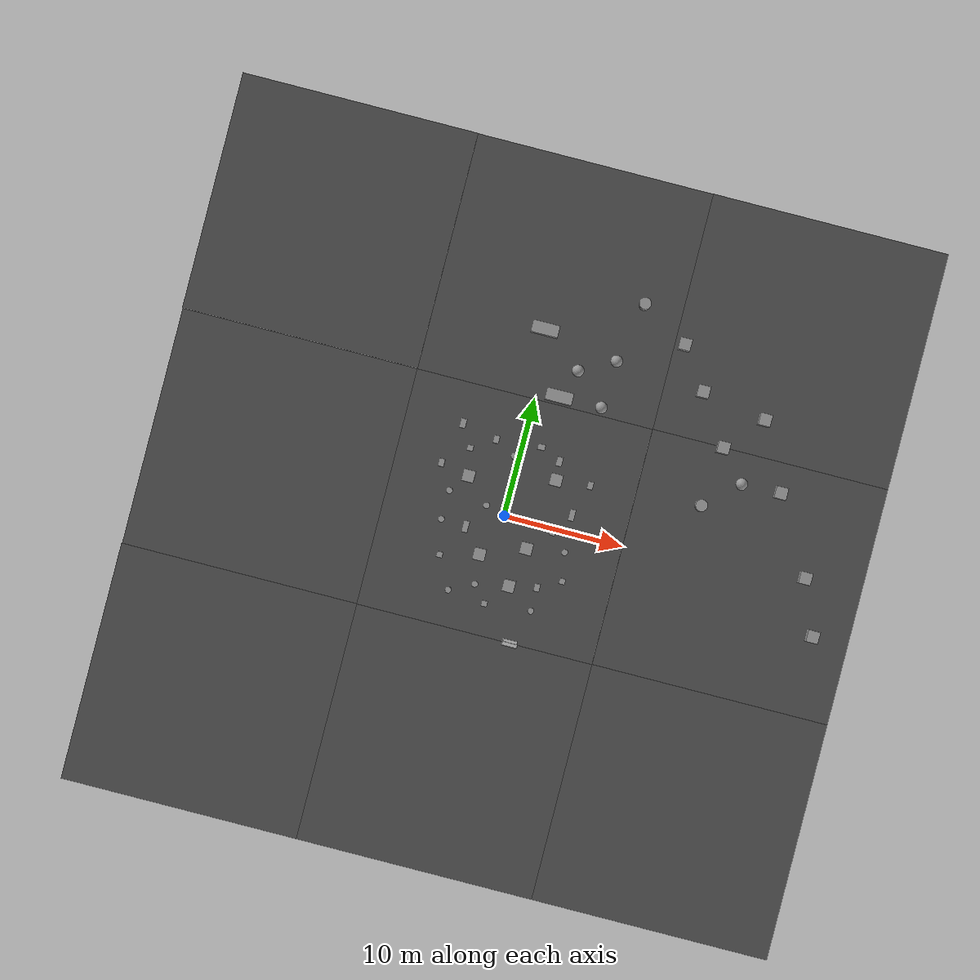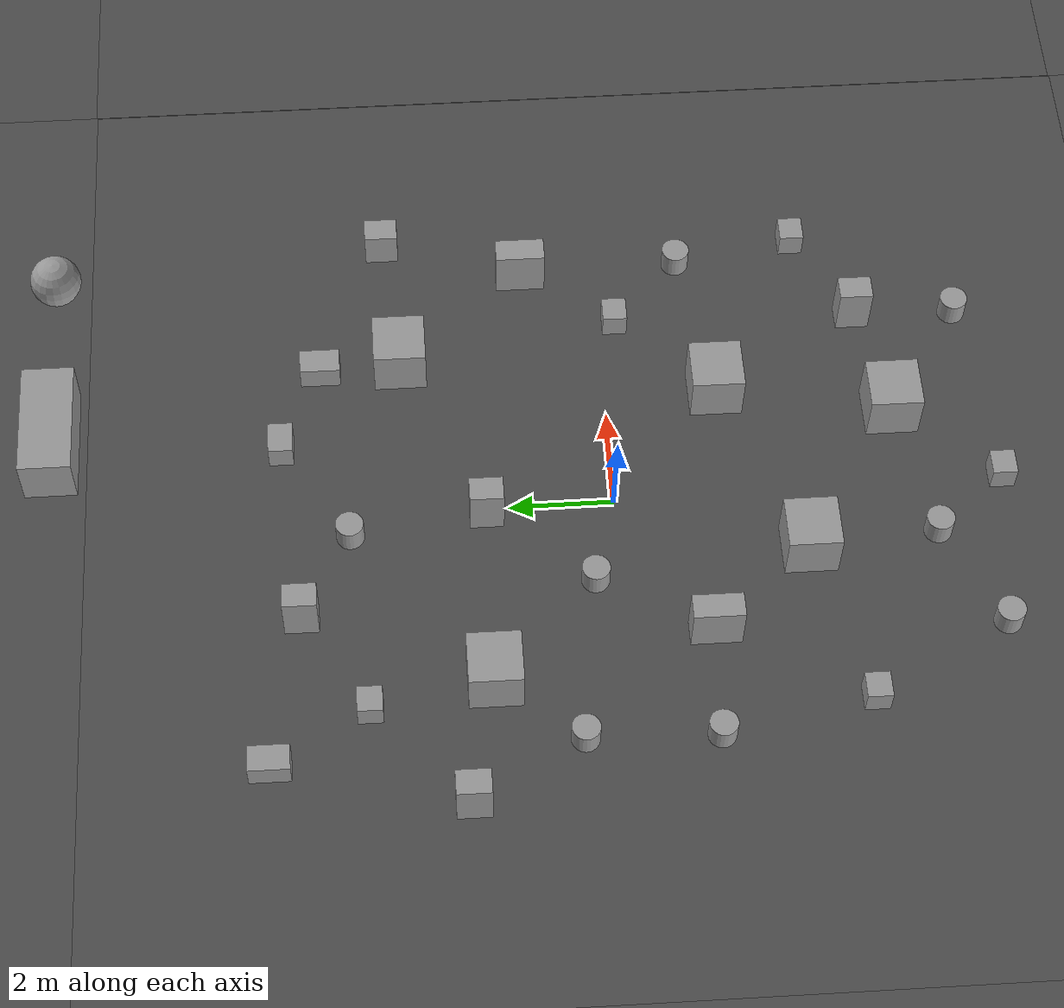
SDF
<sdf version="1.7">
 <world name="default">
  <model name="ground_plane">
   <static>1</static>
   <link name="link">
    <collision name="collision">
     <geometry><plane><normal>0 0 1</normal><size>100 100</size></plane></geometry>
     <surface>
      <contact><collide_bitmask>65535</collide_bitmask></contact>
      <friction><ode><mu>100</mu><mu2>50</mu2></ode></friction>
     </surface>
    </collision>
    <visual name="visual">
     <cast_shadows>0</cast_shadows>
     <geometry><plane><normal>0 0 1</normal><size>100 100</size></plane></geometry>
     <material>
      <script><uri>file://media/materials/scripts/gazebo.material</uri><name>Gazebo/Grey</name></script>
     </material>
    </visual>
   </link>
  </model>
  <model name="asphalt_plane">
   <static>1</static>
   <link name="link">
    <collision name="collision"><geometry><box><size>20 20 0.1</size></box></geometry></collision>
    <visual name="visual">
     <cast_shadows>0</cast_shadows>
     <geometry><box><size>20 20 0.1</size></box></geometry>
     <material>
      <script>
       <uri>model://asphalt_plane/materials/scripts</uri>
       <uri>model://asphalt_plane/materials/textures</uri>
       <name>vrc/asphalt</name>
      </script>
     </material>
    </visual>
   </link>
   <pose>-0.014859 -0.026662 0 0 -0 0</pose>
  </model>
  <model name="asphalt_plane_clone">
   <static>1</static>
   <link name="link">
    <collision name="collision"><geometry><box><size>20 20 0.1</size></box></geometry></collision>
    <visual name="visual">
     <cast_shadows>0</cast_shadows>
     <geometry><box><size>20 20 0.1</size></box></geometry>
     <material>
      <script>
       <uri>model://asphalt_plane/materials/scripts</uri>
       <uri>model://asphalt_plane/materials/textures</uri>
       <name>vrc/asphalt</name>
      </script>
     </material>
    </visual>
   </link>
   <pose>20 0 0 0 -0 0</pose>
  </model>
  <model name="asphalt_plane_clone_0">
   <static>1</static>
   <link name="link">
    <collision name="collision"><geometry><box><size>20 20 0.1</size></box></geometry></collision>
    <visual name="visual">
     <cast_shadows>0</cast_shadows>
     <geometry><box><size>20 20 0.1</size></box></geometry>
     <material>
      <script>
       <uri>model://asphalt_plane/materials/scripts</uri>
       <uri>model://asphalt_plane/materials/textures</uri>
       <name>vrc/asphalt</name>
      </script>
     </material>
    </visual>
   </link>
   <pose>20 -20 0 0 -0 0</pose>
  </model>
  <model name="asphalt_plane_clone_1">
   <static>1</static>
   <link name="link">
    <collision name="collision"><geometry><box><size>20 20 0.1</size></box></geometry></collision>
    <visual name="visual">
     <cast_shadows>0</cast_shadows>
     <geometry><box><size>20 20 0.1</size></box></geometry>
     <material>
      <script>
       <uri>model://asphalt_plane/materials/scripts</uri>
       <uri>model://asphalt_plane/materials/textures</uri>
       <name>vrc/asphalt</name>
      </script>
     </material>
    </visual>
   </link>
   <pose>0 -20 0 0 -0 0</pose>
  </model>
  <model name="asphalt_plane_clone_2">
   <static>1</static>
   <link name="link">
    <collision name="collision"><geometry><box><size>20 20 0.1</size></box></geometry></collision>
    <visual name="visual">
     <cast_shadows>0</cast_shadows>
     <geometry><box><size>20 20 0.1</size></box></geometry>
     <material>
      <script>
       <uri>model://asphalt_plane/materials/scripts</uri>
       <uri>model://asphalt_plane/materials/textures</uri>
       <name>vrc/asphalt</name>
      </script>
     </material>
    </visual>
   </link>
   <pose>-20 -20 0 0 -0 0</pose>
  </model>
  <model name="asphalt_plane_clone_3">
   <static>1</static>
   <link name="link">
    <collision name="collision"><geometry><box><size>20 20 0.1</size></box></geometry></collision>
    <visual name="visual">
     <cast_shadows>0</cast_shadows>
     <geometry><box><size>20 20 0.1</size></box></geometry>
     <material>
      <script>
       <uri>model://asphalt_plane/materials/scripts</uri>
       <uri>model://asphalt_plane/materials/textures</uri>
       <name>vrc/asphalt</name>
      </script>
     </material>
    </visual>
   </link>
   <pose>-19.9436 -0.028987 0 0 -0 0</pose>
  </model>
  <model name="asphalt_plane_clone_4">
   <static>1</static>
   <link name="link">
    <collision name="collision"><geometry><box><size>20 20 0.1</size></box></geometry></collision>
    <visual name="visual">
     <cast_shadows>0</cast_shadows>
     <geometry><box><size>20 20 0.1</size></box></geometry>
     <material>
      <script>
       <uri>model://asphalt_plane/materials/scripts</uri>
       <uri>model://asphalt_plane/materials/textures</uri>
       <name>vrc/asphalt</name>
      </script>
     </material>
    </visual>
   </link>
   <pose>-20 20 0 0 -0 0</pose>
  </model>
  <model name="asphalt_plane_clone_5">
   <static>1</static>
   <link name="link">
    <collision name="collision"><geometry><box><size>20 20 0.1</size></box></geometry></collision>
    <visual name="visual">
     <cast_shadows>0</cast_shadows>
     <geometry><box><size>20 20 0.1</size></box></geometry>
     <material>
      <script>
       <uri>model://asphalt_plane/materials/scripts</uri>
       <uri>model://asphalt_plane/materials/textures</uri>
       <name>vrc/asphalt</name>
      </script>
     </material>
    </visual>
   </link>
   <pose>0.007354 19.9731 0 0 -0 0</pose>
  </model>
  <model name="asphalt_plane_clone_6">
   <static>1</static>
   <link name="link">
    <collision name="collision"><geometry><box><size>20 20 0.1</size></box></geometry></collision>
    <visual name="visual">
     <cast_shadows>0</cast_shadows>
     <geometry><box><size>20 20 0.1</size></box></geometry>
     <material>
      <script>
       <uri>model://asphalt_plane/materials/scripts</uri>
       <uri>model://asphalt_plane/materials/textures</uri>
       <name>vrc/asphalt</name>
      </script>
     </material>
    </visual>
   </link>
   <pose>20 20 0 0 -0 0</pose>
  </model>
  <model name="unit_box">
   <pose>3.3249 3.92528 0.549995 -9e-06 -1e-06 -1e-06</pose>
   <link name="link">
    <inertial>
     <mass>1</mass>
     <inertia>
      <ixx>0.166667</ixx>
      <ixy>0</ixy>
      <ixz>0</ixz>
      <iyy>0.166667</iyy>
      <iyz>0</iyz>
      <izz>0.166667</izz>
     </inertia>
    </inertial>
    <collision name="collision"><geometry><box><size>1 1 1</size></box></geometry></collision>
    <visual name="visual">
     <geometry><box><size>1 1 1</size></box></geometry>
     <material>
      <script><name>Gazebo/Grey</name><uri>file://media/materials/scripts/gazebo.material</uri></script>
     </material>
    </visual>
   </link>
  </model>
  <model name="unit_box_0_clone">
   <pose>3.22244 5.47547 0.301356 0 -0 5e-06</pose>
   <link name="link">
    <inertial>
     <mass>1</mass>
     <inertia>
      <ixx>0.166667</ixx>
      <ixy>0</ixy>
      <ixz>0</ixz>
      <iyy>0.166667</iyy>
      <iyz>0</iyz>
      <izz>0.166667</izz>
     </inertia>
    </inertial>
    <collision name="collision">
     <geometry><box><size>0.495294 0.766084 0.502712</size></box></geometry>
    </collision>
    <visual name="visual">
     <geometry><box><size>0.495294 0.766084 0.502712</size></box></geometry>
     <material>
      <script><name>Gazebo/Grey</name><uri>file://media/materials/scripts/gazebo.material</uri></script>
     </material>
    </visual>
   </link>
  </model>
  <model name="unit_box_0_clone_0">
   <pose>1.49943 6.26197 0.301357 3e-06 0 1e-06</pose>
   <link name="link">
    <inertial>
     <mass>1</mass>
     <inertia>
      <ixx>0.166667</ixx>
      <ixy>0</ixy>
      <ixz>0</ixz>
      <iyy>0.166667</iyy>
      <iyz>0</iyz>
      <izz>0.166667</izz>
     </inertia>
    </inertial>
    <collision name="collision">
     <geometry><box><size>0.622689 0.467832 0.502712</size></box></geometry>
    </collision>
    <visual name="visual">
     <geometry><box><size>0.622689 0.467832 0.502712</size></box></geometry>
     <material>
      <script><name>Gazebo/Grey</name><uri>file://media/materials/scripts/gazebo.material</uri></script>
     </material>
    </visual>
   </link>
  </model>
  <model name="unit_box_0_clone_3">
   <pose>4.12078 -0.316168 0.301356 -0 -0 -0.006989</pose>
   <link name="link">
    <inertial>
     <mass>1</mass>
     <inertia>
      <ixx>0.166667</ixx>
      <ixy>0</ixy>
      <ixz>0</ixz>
      <iyy>0.166667</iyy>
      <iyz>0</iyz>
      <izz>0.166667</izz>
     </inertia>
    </inertial>
    <collision name="collision">
     <geometry><box><size>0.495294 0.467832 0.502712</size></box></geometry>
    </collision>
    <visual name="visual">
     <geometry><box><size>0.495294 0.467832 0.502712</size></box></geometry>
     <material>
      <script><name>Gazebo/Grey</name><uri>file://media/materials/scripts/gazebo.material</uri></script>
     </material>
    </visual>
   </link>
  </model>
  <model name="unit_cylinder_clone_1">
   <pose>-1.6936 0.491642 0.294835 0 -0 0.001775</pose>
   <link name="link">
    <inertial>
     <mass>1</mass>
     <inertia><ixx>0.145833</ixx><ixy>0</ixy><ixz>0</ixz><iyy>0.145833</iyy><iyz>0</iyz><izz>0.125</izz></inertia>
    </inertial>
    <collision name="collision">
     <geometry><cylinder><radius>0.264047</radius><length>0.48967</length></cylinder></geometry>
    </collision>
    <visual name="visual">
     <geometry><cylinder><radius>0.264047</radius><length>0.48967</length></cylinder></geometry>
     <material>
      <script><name>Gazebo/Grey</name><uri>file://media/materials/scripts/gazebo.material</uri></script>
     </material>
    </visual>
   </link>
  </model>
  <model name="unit_cylinder_clone_3">
   <pose>-0.494202 5.00003 0.294835 0 -0 0.001569</pose>
   <link name="link">
    <inertial>
     <mass>1</mass>
     <inertia><ixx>0.145833</ixx><ixy>0</ixy><ixz>0</ixz><iyy>0.145833</iyy><iyz>0</iyz><izz>0.125</izz></inertia>
    </inertial>
    <collision name="collision">
     <geometry><cylinder><radius>0.264047</radius><length>0.48967</length></cylinder></geometry>
    </collision>
    <visual name="visual">
     <geometry><cylinder><radius>0.264047</radius><length>0.48967</length></cylinder></geometry>
     <material>
      <script><name>Gazebo/Grey</name><uri>file://media/materials/scripts/gazebo.material</uri></script>
     </material>
    </visual>
   </link>
  </model>
  <model name="unit_cylinder_clone_5">
   <pose>5.50007 -1.65315 0.294835 0 -0 0.000947</pose>
   <link name="link">
    <inertial>
     <mass>1</mass>
     <inertia><ixx>0.145833</ixx><ixy>0</ixy><ixz>0</ixz><iyy>0.145833</iyy><iyz>0</iyz><izz>0.125</izz></inertia>
    </inertial>
    <collision name="collision">
     <geometry><cylinder><radius>0.264047</radius><length>0.48967</length></cylinder></geometry>
    </collision>
    <visual name="visual">
     <geometry><cylinder><radius>0.264047</radius><length>0.48967</length></cylinder></geometry>
     <material>
      <script><name>Gazebo/Grey</name><uri>file://media/materials/scripts/gazebo.material</uri></script>
     </material>
    </visual>
   </link>
  </model>
  <model name="unit_cylinder_clone_9">
   <pose>-1.00008 -5.99992 0.294837 4e-06 -8e-06 0.000639</pose>
   <link name="link">
    <inertial>
     <mass>1</mass>
     <inertia><ixx>0.145833</ixx><ixy>0</ixy><ixz>0</ixz><iyy>0.145833</iyy><iyz>0</iyz><izz>0.125</izz></inertia>
    </inertial>
    <collision name="collision">
     <geometry><cylinder><radius>0.264047</radius><length>0.48967</length></cylinder></geometry>
    </collision>
    <visual name="visual">
     <geometry><cylinder><radius>0.264047</radius><length>0.48967</length></cylinder></geometry>
     <material>
      <script><name>Gazebo/Grey</name><uri>file://media/materials/scripts/gazebo.material</uri></script>
     </material>
    </visual>
   </link>
  </model>
  <model name="unit_cylinder_clone_12">
   <pose>-4.99989 -1.52043 0.294836 1e-06 3e-06 0.000489</pose>
   <link name="link">
    <inertial>
     <mass>1</mass>
     <inertia><ixx>0.145833</ixx><ixy>0</ixy><ixz>0</ixz><iyy>0.145833</iyy><iyz>0</iyz><izz>0.125</izz></inertia>
    </inertial>
    <collision name="collision">
     <geometry><cylinder><radius>0.264047</radius><length>0.48967</length></cylinder></geometry>
    </collision>
    <visual name="visual">
     <geometry><cylinder><radius>0.264047</radius><length>0.48967</length></cylinder></geometry>
     <material>
      <script><name>Gazebo/Grey</name><uri>file://media/materials/scripts/gazebo.material</uri></script>
     </material>
    </visual>
   </link>
  </model>
  <model name="unit_cylinder_clone_15">
   <pose>3.99999 -7.00008 0.294837 3e-06 -5e-06 0.001235</pose>
   <link name="link">
    <inertial>
     <mass>1</mass>
     <inertia><ixx>0.145833</ixx><ixy>0</ixy><ixz>0</ixz><iyy>0.145833</iyy><iyz>0</iyz><izz>0.125</izz></inertia>
    </inertial>
    <collision name="collision">
     <geometry><cylinder><radius>0.264047</radius><length>0.48967</length></cylinder></geometry>
    </collision>
    <visual name="visual">
     <geometry><cylinder><radius>0.264047</radius><length>0.48967</length></cylinder></geometry>
     <material>
      <script><name>Gazebo/Grey</name><uri>file://media/materials/scripts/gazebo.material</uri></script>
     </material>
    </visual>
   </link>
  </model>
  <model name="unit_cylinder_clone_16">
   <pose>-4.94241 0.924959 0.294835 -1e-06 -3e-06 0.001008</pose>
   <link name="link">
    <inertial>
     <mass>1</mass>
     <inertia><ixx>0.145833</ixx><ixy>0</ixy><ixz>0</ixz><iyy>0.145833</iyy><iyz>0</iyz><izz>0.125</izz></inertia>
    </inertial>
    <collision name="collision">
     <geometry><cylinder><radius>0.264047</radius><length>0.48967</length></cylinder></geometry>
    </collision>
    <visual name="visual">
     <geometry><cylinder><radius>0.264047</radius><length>0.48967</length></cylinder></geometry>
     <material>
      <script><name>Gazebo/Grey</name><uri>file://media/materials/scripts/gazebo.material</uri></script>
     </material>
    </visual>
   </link>
  </model>
  <model name="unit_cylinder_clone_17">
   <pose>-3.00012 -6.99988 0.294827 2e-06 -4e-06 0.000125</pose>
   <link name="link">
    <inertial>
     <mass>1</mass>
     <inertia><ixx>0.145833</ixx><ixy>0</ixy><ixz>0</ixz><iyy>0.145833</iyy><iyz>0</iyz><izz>0.125</izz></inertia>
    </inertial>
    <collision name="collision">
     <geometry><cylinder><radius>0.264047</radius><length>0.48967</length></cylinder></geometry>
    </collision>
    <visual name="visual">
     <geometry><cylinder><radius>0.264047</radius><length>0.48967</length></cylinder></geometry>
     <material>
      <script><name>Gazebo/Grey</name><uri>file://media/materials/scripts/gazebo.material</uri></script>
     </material>
    </visual>
   </link>
  </model>
  <model name="unit_box_0_clone_1_clone">
   <pose>-4.15621 4.74188 0.301356 0 -0 1e-06</pose>
   <link name="link">
    <inertial>
     <mass>1</mass>
     <inertia>
      <ixx>0.166667</ixx>
      <ixy>0</ixy>
      <ixz>0</ixz>
      <iyy>0.166667</iyy>
      <iyz>0</iyz>
      <izz>0.166667</izz>
     </inertia>
    </inertial>
    <collision name="collision">
     <geometry><box><size>0.495294 0.467832 0.502712</size></box></geometry>
    </collision>
    <visual name="visual">
     <geometry><box><size>0.495294 0.467832 0.502712</size></box></geometry>
     <material>
      <script><name>Gazebo/Grey</name><uri>file://media/materials/scripts/gazebo.material</uri></script>
     </material>
    </visual>
   </link>
  </model>
  <model name="unit_box_0_clone_1_clone_2">
   <pose>5.89538 -3.99875 0.301356 0 -0 1e-06</pose>
   <link name="link">
    <inertial>
     <mass>1</mass>
     <inertia>
      <ixx>0.166667</ixx>
      <ixy>0</ixy>
      <ixz>0</ixz>
      <iyy>0.166667</iyy>
      <iyz>0</iyz>
      <izz>0.166667</izz>
     </inertia>
    </inertial>
    <collision name="collision">
     <geometry><box><size>0.495294 0.467832 0.502712</size></box></geometry>
    </collision>
    <visual name="visual">
     <geometry><box><size>0.495294 0.467832 0.502712</size></box></geometry>
     <material>
      <script><name>Gazebo/Grey</name><uri>file://media/materials/scripts/gazebo.material</uri></script>
     </material>
    </visual>
   </link>
  </model>
  <model name="unit_box_0_clone_1_clone_3">
   <pose>0.151949 -7.36214 0.301356 0 -0 1e-06</pose>
   <link name="link">
    <inertial>
     <mass>1</mass>
     <inertia>
      <ixx>0.166667</ixx>
      <ixy>0</ixy>
      <ixz>0</ixz>
      <iyy>0.166667</iyy>
      <iyz>0</iyz>
      <izz>0.166667</izz>
     </inertia>
    </inertial>
    <collision name="collision">
     <geometry><box><size>0.495294 0.467832 0.502712</size></box></geometry>
    </collision>
    <visual name="visual">
     <geometry><box><size>0.495294 0.467832 0.502712</size></box></geometry>
     <material>
      <script><name>Gazebo/Grey</name><uri>file://media/materials/scripts/gazebo.material</uri></script>
     </material>
    </visual>
   </link>
  </model>
  <model name="unit_box_0_clone_1_clone_4">
   <pose>-4.41031 -4.36413 0.301356 0 -0 1e-06</pose>
   <link name="link">
    <inertial>
     <mass>1</mass>
     <inertia>
      <ixx>0.166667</ixx>
      <ixy>0</ixy>
      <ixz>0</ixz>
      <iyy>0.166667</iyy>
      <iyz>0</iyz>
      <izz>0.166667</izz>
     </inertia>
    </inertial>
    <collision name="collision">
     <geometry><box><size>0.495294 0.467832 0.502712</size></box></geometry>
    </collision>
    <visual name="visual">
     <geometry><box><size>0.495294 0.467832 0.502712</size></box></geometry>
     <material>
      <script><name>Gazebo/Grey</name><uri>file://media/materials/scripts/gazebo.material</uri></script>
     </material>
    </visual>
   </link>
  </model>
  <model name="unit_box_1">
   <pose>1.73473 -5.44842 0.549995 -9e-06 -1e-06 -1e-06</pose>
   <link name="link">
    <inertial>
     <mass>1</mass>
     <inertia>
      <ixx>0.166667</ixx>
      <ixy>0</ixy>
      <ixz>0</ixz>
      <iyy>0.166667</iyy>
      <iyz>0</iyz>
      <izz>0.166667</izz>
     </inertia>
    </inertial>
    <collision name="collision"><geometry><box><size>1 1 1</size></box></geometry></collision>
    <visual name="visual">
     <geometry><box><size>1 1 1</size></box></geometry>
     <material>
      <script><name>Gazebo/Grey</name><uri>file://media/materials/scripts/gazebo.material</uri></script>
     </material>
    </visual>
   </link>
  </model>
  <model name="unit_box_2">
   <pose>-1.24056 -3.52809 0.549995 -9e-06 -1e-06 -1e-06</pose>
   <link name="link">
    <inertial>
     <mass>1</mass>
     <inertia>
      <ixx>0.166667</ixx>
      <ixy>0</ixy>
      <ixz>0</ixz>
      <iyy>0.166667</iyy>
      <iyz>0</iyz>
      <izz>0.166667</izz>
     </inertia>
    </inertial>
    <collision name="collision"><geometry><box><size>1 1 1</size></box></geometry></collision>
    <visual name="visual">
     <geometry><box><size>1 1 1</size></box></geometry>
     <material>
      <script><name>Gazebo/Grey</name><uri>file://media/materials/scripts/gazebo.material</uri></script>
     </material>
    </visual>
   </link>
  </model>
  <model name="unit_box_3">
   <pose>-0.185436 2.4314 0.55 0 -0 0</pose>
   <link name="link">
    <inertial>
     <mass>1</mass>
     <inertia>
      <ixx>0.166667</ixx>
      <ixy>0</ixy>
      <ixz>0</ixz>
      <iyy>0.166667</iyy>
      <iyz>0</iyz>
      <izz>0.166667</izz>
     </inertia>
    </inertial>
    <collision name="collision"><geometry><box><size>0.473217 0.637104 1</size></box></geometry></collision>
    <visual name="visual">
     <geometry><box><size>0.473217 0.637104 1</size></box></geometry>
     <material>
      <script><name>Gazebo/Grey</name><uri>file://media/materials/scripts/gazebo.material</uri></script>
     </material>
    </visual>
   </link>
  </model>
  <model name="unit_box_3_clone">
   <pose>-2.24652 5.9397 0.55 0 -0 0</pose>
   <link name="link">
    <inertial>
     <mass>1</mass>
     <inertia>
      <ixx>0.166667</ixx>
      <ixy>0</ixy>
      <ixz>0</ixz>
      <iyy>0.166667</iyy>
      <iyz>0</iyz>
      <izz>0.166667</izz>
     </inertia>
    </inertial>
    <collision name="collision"><geometry><box><size>0.473217 0.637104 1</size></box></geometry></collision>
    <visual name="visual">
     <geometry><box><size>0.473217 0.637104 1</size></box></geometry>
     <material>
      <script><name>Gazebo/Grey</name><uri>file://media/materials/scripts/gazebo.material</uri></script>
     </material>
    </visual>
   </link>
  </model>
  <model name="unit_box_3_clone_0">
   <pose>-2.90923 -1.60892 0.55 0 -0 0</pose>
   <link name="link">
    <inertial>
     <mass>1</mass>
     <inertia>
      <ixx>0.166667</ixx>
      <ixy>0</ixy>
      <ixz>0</ixz>
      <iyy>0.166667</iyy>
      <iyz>0</iyz>
      <izz>0.166667</izz>
     </inertia>
    </inertial>
    <collision name="collision"><geometry><box><size>0.473217 0.950731 1</size></box></geometry></collision>
    <visual name="visual">
     <geometry><box><size>0.473217 0.950731 1</size></box></geometry>
     <material>
      <script><name>Gazebo/Grey</name><uri>file://media/materials/scripts/gazebo.material</uri></script>
     </material>
    </visual>
   </link>
  </model>
  <model name="unit_box_3_clone_1">
   <pose>6.15547 4.18849 0.422713 0 -0 0</pose>
   <link name="link">
    <inertial>
     <mass>1</mass>
     <inertia>
      <ixx>0.166667</ixx>
      <ixy>0</ixy>
      <ixz>0</ixz>
      <iyy>0.166667</iyy>
      <iyz>0</iyz>
      <izz>0.166667</izz>
     </inertia>
    </inertial>
    <collision name="collision">
     <geometry><box><size>0.473217 0.637104 0.745427</size></box></geometry>
    </collision>
    <visual name="visual">
     <geometry><box><size>0.473217 0.637104 0.745427</size></box></geometry>
     <material>
      <script><name>Gazebo/Grey</name><uri>file://media/materials/scripts/gazebo.material</uri></script>
     </material>
    </visual>
   </link>
  </model>
  <model name="unit_box_3_clone_2">
   <pose>-6.12917 2.98269 0.55 0 -0 0</pose>
   <link name="link">
    <inertial>
     <mass>1</mass>
     <inertia>
      <ixx>0.166667</ixx>
      <ixy>0</ixy>
      <ixz>0</ixz>
      <iyy>0.166667</iyy>
      <iyz>0</iyz>
      <izz>0.166667</izz>
     </inertia>
    </inertial>
    <collision name="collision"><geometry><box><size>0.473217 0.637104 1</size></box></geometry></collision>
    <visual name="visual">
     <geometry><box><size>0.473217 0.637104 1</size></box></geometry>
     <material>
      <script><name>Gazebo/Grey</name><uri>file://media/materials/scripts/gazebo.material</uri></script>
     </material>
    </visual>
   </link>
  </model>
  <model name="unit_box_3_clone_3">
   <pose>4 -5 0.55 0 -0 0</pose>
   <link name="link">
    <inertial>
     <mass>1</mass>
     <inertia>
      <ixx>0.166667</ixx>
      <ixy>0</ixy>
      <ixz>0</ixz>
      <iyy>0.166667</iyy>
      <iyz>0</iyz>
      <izz>0.166667</izz>
     </inertia>
    </inertial>
    <collision name="collision"><geometry><box><size>0.473217 0.637104 1</size></box></geometry></collision>
    <visual name="visual">
     <geometry><box><size>0.473217 0.637104 1</size></box></geometry>
     <material>
      <script><name>Gazebo/Grey</name><uri>file://media/materials/scripts/gazebo.material</uri></script>
     </material>
    </visual>
   </link>
  </model>
  <model name="unit_box_4">
   <pose>15.9542 9.93418 0.549994 7e-06 0 -8e-06</pose>
   <link name="link">
    <inertial>
     <mass>1</mass>
     <inertia>
      <ixx>0.166667</ixx>
      <ixy>0</ixy>
      <ixz>0</ixz>
      <iyy>0.166667</iyy>
      <iyz>0</iyz>
      <izz>0.166667</izz>
     </inertia>
    </inertial>
    <collision name="collision"><geometry><box><size>1 1 1</size></box></geometry></collision>
    <visual name="visual">
     <geometry><box><size>1 1 1</size></box></geometry>
     <material>
      <script><name>Gazebo/Grey</name><uri>file://media/materials/scripts/gazebo.material</uri></script>
     </material>
    </visual>
   </link>
  </model>
  <model name="unit_box_5">
   <pose>1.87337 10.6312 0.549967 0 -2.9e-05 0</pose>
   <link name="link">
    <inertial>
     <mass>1</mass>
     <inertia>
      <ixx>0.166667</ixx>
      <ixy>0</ixy>
      <ixz>0</ixz>
      <iyy>0.166667</iyy>
      <iyz>0</iyz>
      <izz>0.166667</izz>
     </inertia>
    </inertial>
    <collision name="collision"><geometry><box><size>2.25366 1 1</size></box></geometry></collision>
    <visual name="visual">
     <geometry><box><size>2.25366 1 1</size></box></geometry>
     <material>
      <script><name>Gazebo/Grey</name><uri>file://media/materials/scripts/gazebo.material</uri></script>
     </material>
    </visual>
   </link>
  </model>
  <model name="unit_box_5_clone">
   <pose>-0.614729 15.7172 0.549967 0 2.9e-05 0</pose>
   <link name="link">
    <inertial>
     <mass>1</mass>
     <inertia>
      <ixx>0.166667</ixx>
      <ixy>0</ixy>
      <ixz>0</ixz>
      <iyy>0.166667</iyy>
      <iyz>0</iyz>
      <izz>0.166667</izz>
     </inertia>
    </inertial>
    <collision name="collision"><geometry><box><size>2.25366 1 1</size></box></geometry></collision>
    <visual name="visual">
     <geometry><box><size>2.25366 1 1</size></box></geometry>
     <material>
      <script><name>Gazebo/Grey</name><uri>file://media/materials/scripts/gazebo.material</uri></script>
     </material>
    </visual>
   </link>
  </model>
  <model name="unit_sphere">
   <link name="link">
    <inertial>
     <mass>1.41372</mass>
     <inertia>
      <ixx>0.141372</ixx>
      <ixy>0</ixy>
      <ixz>0</ixz>
      <iyy>0.141372</iyy>
      <iyz>0</iyz>
      <izz>0.141372</izz>
     </inertia>
    </inertial>
    <visual name="visual">
     <geometry><sphere><radius>0.5</radius></sphere></geometry>
     <material>
      <script><name>Gazebo/Grey</name><uri>file://media/materials/scripts/gazebo.material</uri></script>
      <shader type="pixel"><normal_map>__default__</normal_map></shader>
     </material>
    </visual>
    <collision name="collision">
     <geometry><sphere><radius>0.5</radius></sphere></geometry>
     <surface>
      <friction>
       <ode><mu>1</mu><mu2>1</mu2><fdir1>0 0 0</fdir1><slip1>0</slip1><slip2>0</slip2></ode>
       <torsional>
        <coefficient>1</coefficient>
        <patch_radius>0</patch_radius>
        <surface_radius>0</surface_radius>
        <use_patch_radius>1</use_patch_radius>
        <ode><slip>0</slip></ode>
       </torsional>
      </friction>
      <bounce><restitution_coefficient>0</restitution_coefficient><threshold>1e+06</threshold></bounce>
      <contact>
       <collide_without_contact>0</collide_without_contact>
       <collide_without_contact_bitmask>1</collide_without_contact_bitmask>
       <collide_bitmask>1</collide_bitmask>
       <ode>
        <soft_cfm>0</soft_cfm>
        <soft_erp>0.2</soft_erp>
        <kp>1e+13</kp>
        <kd>1</kd>
        <max_vel>0.01</max_vel>
        <min_depth>0</min_depth>
       </ode>
       <bullet>
        <split_impulse>1</split_impulse>
        <split_impulse_penetration_threshold>-0.01</split_impulse_penetration_threshold>
        <soft_cfm>0</soft_cfm>
        <soft_erp>0.2</soft_erp>
        <kp>1e+13</kp>
        <kd>1</kd>
       </bullet>
      </contact>
     </surface>
    </collision>
   </link>
   <static>0</static>
   <pose>5.71347 14.6249 0.55 0 -0 0</pose>
  </model>
  <model name="unit_sphere_clone">
   <link name="link">
    <inertial>
     <mass>1.41372</mass>
     <inertia>
      <ixx>0.141372</ixx>
      <ixy>0</ixy>
      <ixz>0</ixz>
      <iyy>0.141372</iyy>
      <iyz>0</iyz>
      <izz>0.141372</izz>
     </inertia>
    </inertial>
    <visual name="visual">
     <geometry><sphere><radius>0.5</radius></sphere></geometry>
     <material>
      <script><name>Gazebo/Grey</name><uri>file://media/materials/scripts/gazebo.material</uri></script>
      <shader type="pixel"><normal_map>__default__</normal_map></shader>
     </material>
    </visual>
    <collision name="collision">
     <geometry><sphere><radius>0.5</radius></sphere></geometry>
     <surface>
      <friction>
       <ode><mu>1</mu><mu2>1</mu2><fdir1>0 0 0</fdir1><slip1>0</slip1><slip2>0</slip2></ode>
       <torsional>
        <coefficient>1</coefficient>
        <patch_radius>0</patch_radius>
        <surface_radius>0</surface_radius>
        <use_patch_radius>1</use_patch_radius>
        <ode><slip>0</slip></ode>
       </torsional>
      </friction>
      <bounce><restitution_coefficient>0</restitution_coefficient><threshold>1e+06</threshold></bounce>
      <contact>
       <collide_without_contact>0</collide_without_contact>
       <collide_without_contact_bitmask>1</collide_without_contact_bitmask>
       <collide_bitmask>1</collide_bitmask>
       <ode>
        <soft_cfm>0</soft_cfm>
        <soft_erp>0.2</soft_erp>
        <kp>1e+13</kp>
        <kd>1</kd>
        <max_vel>0.01</max_vel>
        <min_depth>0</min_depth>
       </ode>
       <bullet>
        <split_impulse>1</split_impulse>
        <split_impulse_penetration_threshold>-0.01</split_impulse_penetration_threshold>
        <soft_cfm>0</soft_cfm>
        <soft_erp>0.2</soft_erp>
        <kp>1e+13</kp>
        <kd>1</kd>
       </bullet>
      </contact>
     </surface>
    </collision>
   </link>
   <static>0</static>
   <pose>5.44361 10.6261 0.55 0 -0 0</pose>
  </model>
  <model name="unit_cylinder_0">
   <pose>15.381 4.88172 0.55 -0 -0 -1e-06</pose>
   <link name="link">
    <inertial>
     <mass>1</mass>
     <inertia><ixx>0.145833</ixx><ixy>0</ixy><ixz>0</ixz><iyy>0.145833</iyy><iyz>0</iyz><izz>0.125</izz></inertia>
    </inertial>
    <collision name="collision">
     <geometry><cylinder><radius>0.5</radius><length>1</length></cylinder></geometry>
    </collision>
    <visual name="visual">
     <geometry><cylinder><radius>0.5</radius><length>1</length></cylinder></geometry>
     <material>
      <script><name>Gazebo/Grey</name><uri>file://media/materials/scripts/gazebo.material</uri></script>
     </material>
    </visual>
   </link>
  </model>
  <model name="unit_sphere_clone_0">
   <link name="link">
    <inertial>
     <mass>1.41372</mass>
     <inertia>
      <ixx>0.141372</ixx>
      <ixy>0</ixy>
      <ixz>0</ixz>
      <iyy>0.141372</iyy>
      <iyz>0</iyz>
      <izz>0.141372</izz>
     </inertia>
    </inertial>
    <visual name="visual">
     <geometry><sphere><radius>0.5</radius></sphere></geometry>
     <material>
      <script><name>Gazebo/Grey</name><uri>file://media/materials/scripts/gazebo.material</uri></script>
      <shader type="pixel"><normal_map>__default__</normal_map></shader>
     </material>
    </visual>
    <collision name="collision">
     <geometry><sphere><radius>0.5</radius></sphere></geometry>
     <surface>
      <friction>
       <ode><mu>1</mu><mu2>1</mu2><fdir1>0 0 0</fdir1><slip1>0</slip1><slip2>0</slip2></ode>
       <torsional>
        <coefficient>1</coefficient>
        <patch_radius>0</patch_radius>
        <surface_radius>0</surface_radius>
        <use_patch_radius>1</use_patch_radius>
        <ode><slip>0</slip></ode>
       </torsional>
      </friction>
      <bounce><restitution_coefficient>0</restitution_coefficient><threshold>1e+06</threshold></bounce>
      <contact>
       <collide_without_contact>0</collide_without_contact>
       <collide_without_contact_bitmask>1</collide_without_contact_bitmask>
       <collide_bitmask>1</collide_bitmask>
       <ode>
        <soft_cfm>0</soft_cfm>
        <soft_erp>0.2</soft_erp>
        <kp>1e+13</kp>
        <kd>1</kd>
        <max_vel>0.01</max_vel>
        <min_depth>0</min_depth>
       </ode>
       <bullet>
        <split_impulse>1</split_impulse>
        <split_impulse_penetration_threshold>-0.01</split_impulse_penetration_threshold>
        <soft_cfm>0</soft_cfm>
        <soft_erp>0.2</soft_erp>
        <kp>1e+13</kp>
        <kd>1</kd>
       </bullet>
      </contact>
     </surface>
    </collision>
   </link>
   <static>0</static>
   <pose>2.83927 13.0704 0.55 0 -0 0</pose>
  </model>
  <model name="unit_cylinder_1">
   <pose>6.78697 19.7557 0.55 0 0 -0.000729</pose>
   <link name="link">
    <inertial>
     <mass>1</mass>
     <inertia><ixx>0.145833</ixx><ixy>0</ixy><ixz>0</ixz><iyy>0.145833</iyy><iyz>0</iyz><izz>0.125</izz></inertia>
    </inertial>
    <collision name="collision">
     <geometry><cylinder><radius>0.5</radius><length>1</length></cylinder></geometry>
    </collision>
    <visual name="visual">
     <geometry><cylinder><radius>0.5</radius><length>1</length></cylinder></geometry>
     <material>
      <script><name>Gazebo/Grey</name><uri>file://media/materials/scripts/gazebo.material</uri></script>
     </material>
    </visual>
   </link>
  </model>
  <model name="unit_sphere_0">
   <pose>18.1703 7.41217 0.55 0 -0 0</pose>
   <link name="link">
    <inertial>
     <mass>1</mass>
     <inertia><ixx>0.1</ixx><ixy>0</ixy><ixz>0</ixz><iyy>0.1</iyy><iyz>0</iyz><izz>0.1</izz></inertia>
    </inertial>
    <collision name="collision"><geometry><sphere><radius>0.5</radius></sphere></geometry></collision>
    <visual name="visual">
     <geometry><sphere><radius>0.5</radius></sphere></geometry>
     <material>
      <script><name>Gazebo/Grey</name><uri>file://media/materials/scripts/gazebo.material</uri></script>
     </material>
    </visual>
   </link>
  </model>
  <model name="unit_box_6">
   <pose>25.1293 1.23622 0.55 0 0 -3e-06</pose>
   <link name="link">
    <inertial>
     <mass>1</mass>
     <inertia>
      <ixx>0.166667</ixx>
      <ixy>0</ixy>
      <ixz>0</ixz>
      <iyy>0.166667</iyy>
      <iyz>0</iyz>
      <izz>0.166667</izz>
     </inertia>
    </inertial>
    <collision name="collision"><geometry><box><size>1 1 1</size></box></geometry></collision>
    <visual name="visual">
     <geometry><box><size>1 1 1</size></box></geometry>
     <material>
      <script><name>Gazebo/Grey</name><uri>file://media/materials/scripts/gazebo.material</uri></script>
     </material>
    </visual>
   </link>
  </model>
  <model name="unit_box_4_clone_clone">
   <pose>13.2189 13.9745 0.55 0 0 -3e-06</pose>
   <link name="link">
    <inertial>
     <mass>1</mass>
     <inertia>
      <ixx>0.166667</ixx>
      <ixy>0</ixy>
      <ixz>0</ixz>
      <iyy>0.166667</iyy>
      <iyz>0</iyz>
      <izz>0.166667</izz>
     </inertia>
    </inertial>
    <collision name="collision"><geometry><box><size>1 1 1</size></box></geometry></collision>
    <visual name="visual">
     <geometry><box><size>1 1 1</size></box></geometry>
     <material>
      <script><name>Gazebo/Grey</name><uri>file://media/materials/scripts/gazebo.material</uri></script>
     </material>
    </visual>
   </link>
  </model>
  <model name="unit_box_4_clone_clone_0">
   <pose>10.7891 17.3515 0.55 0 0 -3e-06</pose>
   <link name="link">
    <inertial>
     <mass>1</mass>
     <inertia>
      <ixx>0.166667</ixx>
      <ixy>0</ixy>
      <ixz>0</ixz>
      <iyy>0.166667</iyy>
      <iyz>0</iyz>
      <izz>0.166667</izz>
     </inertia>
    </inertial>
    <collision name="collision"><geometry><box><size>1 1 1</size></box></geometry></collision>
    <visual name="visual">
     <geometry><box><size>1 1 1</size></box></geometry>
     <material>
      <script><name>Gazebo/Grey</name><uri>file://media/materials/scripts/gazebo.material</uri></script>
     </material>
    </visual>
   </link>
  </model>
  <model name="unit_box_4_clone_clone_1">
   <pose>21.4596 7.50863 0.55 0 0 -3e-06</pose>
   <link name="link">
    <inertial>
     <mass>1</mass>
     <inertia>
      <ixx>0.166667</ixx>
      <ixy>0</ixy>
      <ixz>0</ixz>
      <iyy>0.166667</iyy>
      <iyz>0</iyz>
      <izz>0.166667</izz>
     </inertia>
    </inertial>
    <collision name="collision"><geometry><box><size>1 1 1</size></box></geometry></collision>
    <visual name="visual">
     <geometry><box><size>1 1 1</size></box></geometry>
     <material>
      <script><name>Gazebo/Grey</name><uri>file://media/materials/scripts/gazebo.material</uri></script>
     </material>
    </visual>
   </link>
  </model>
  <model name="unit_box_4_clone_clone_2">
   <pose>18.6991 12.9908 0.55 0 0 -3e-06</pose>
   <link name="link">
    <inertial>
     <mass>1</mass>
     <inertia>
      <ixx>0.166667</ixx>
      <ixy>0</ixy>
      <ixz>0</ixz>
      <iyy>0.166667</iyy>
      <iyz>0</iyz>
      <izz>0.166667</izz>
     </inertia>
    </inertial>
    <collision name="collision"><geometry><box><size>1 1 1</size></box></geometry></collision>
    <visual name="visual">
     <geometry><box><size>1 1 1</size></box></geometry>
     <material>
      <script><name>Gazebo/Grey</name><uri>file://media/materials/scripts/gazebo.material</uri></script>
     </material>
    </visual>
   </link>
  </model>
  <model name="unit_box_4_clone_clone_3">
   <pose>26.913 -3.25658 0.55 0 0 -3e-06</pose>
   <link name="link">
    <inertial>
     <mass>1</mass>
     <inertia>
      <ixx>0.166667</ixx>
      <ixy>0</ixy>
      <ixz>0</ixz>
      <iyy>0.166667</iyy>
      <iyz>0</iyz>
      <izz>0.166667</izz>
     </inertia>
    </inertial>
    <collision name="collision"><geometry><box><size>1 1 1</size></box></geometry></collision>
    <visual name="visual">
     <geometry><box><size>1 1 1</size></box></geometry>
     <material>
      <script><name>Gazebo/Grey</name><uri>file://media/materials/scripts/gazebo.material</uri></script>
     </material>
    </visual>
   </link>
  </model>
  <model name="frc2016_portcullis">
   <link name="base">
    <inertial>
     <mass>50</mass>
     <pose>0 0 1.02941 0 -0 0</pose>
     <inertia><ixx>3.81711</ixx><ixy>0</ixy><ixz>0</ixz><iyy>4.87698</iyy><iyz>0</iyz><izz>1.6283</izz></inertia>
    </inertial>
    <visual name="platform">
     <pose>0 0 0.07284 0 -0 0</pose>
     <geometry><box><size>1.27 0.5842 0.003175</size></box></geometry>
    </visual>
    <collision name="platform">
     <pose>0 0 0.07284 0 -0 0</pose>
     <geometry><box><size>1.27 0.5842 0.003175</size></box></geometry>
    </collision>
    <visual name="left_column">
     <pose>0.59284 0 0.99042 0 -0 0</pose>
     <geometry><box><size>0.08375 0.28575 1.83198</size></box></geometry>
    </visual>
    <collision name="left_column">
     <pose>0.59284 0 0.99042 0 -0 0</pose>
     <geometry><box><size>0.08375 0.28575 1.83198</size></box></geometry>
    </collision>
    <visual name="right_column">
     <pose>-0.57759 0 0.99042 0 -0 0</pose>
     <geometry><box><size>0.08375 0.28575 1.83198</size></box></geometry>
    </visual>
    <collision name="right_column">
     <pose>-0.57759 0 0.99042 0 -0 0</pose>
     <geometry><box><size>0.08375 0.28575 1.83198</size></box></geometry>
    </collision>
    <visual name="top">
     <pose>-0.00034 0 1.77722 0 -0 0</pose>
     <geometry><box><size>1.22962 0.28575 0.26657</size></box></geometry>
    </visual>
    <collision name="top">
     <pose>-0.00034 0 1.77722 0 -0 0</pose>
     <geometry><box><size>1.22962 0.28575 0.26657</size></box></geometry>
    </collision>
    <visual name="castor1">
     <pose>-0.45651 -0.16234 0.03272 0 -0 0</pose>
     <geometry><sphere><radius>0.03272</radius></sphere></geometry>
    </visual>
    <collision name="castor1">
     <pose>-0.45651 -0.16234 0.03272 0 -0 0</pose>
     <geometry><sphere><radius>0.03272</radius></sphere></geometry>
    </collision>
    <visual name="castor2">
     <pose>-0.27883 0.21836 0.03272 0 -0 0</pose>
     <geometry><sphere><radius>0.03272</radius></sphere></geometry>
    </visual>
    <collision name="castor2">
     <pose>-0.27883 0.21836 0.03272 0 -0 0</pose>
     <geometry><sphere><radius>0.03272</radius></sphere></geometry>
    </collision>
    <visual name="castor3">
     <pose>0.28083 0.21906 0.03272 0 -0 0</pose>
     <geometry><sphere><radius>0.03272</radius></sphere></geometry>
    </visual>
    <collision name="castor3">
     <pose>0.28083 0.21906 0.03272 0 -0 0</pose>
     <geometry><sphere><radius>0.03272</radius></sphere></geometry>
    </collision>
    <visual name="castor4">
     <pose>0.45871 -0.16186 0.03272 0 -0 0</pose>
     <geometry><sphere><radius>0.03272</radius></sphere></geometry>
    </visual>
    <collision name="castor4">
     <pose>0.45871 -0.16186 0.03272 0 -0 0</pose>
     <geometry><sphere><radius>0.03272</radius></sphere></geometry>
    </collision>
   </link>
   <link name="gate">
    <pose>-0.0287 0.02885 0.93327 0 -0 0</pose>
    <inertial>
     <mass>2</mass>
     <inertia><ixx>3.81711</ixx><ixy>0</ixy><ixz>0</ixz><iyy>4.87698</iyy><iyz>0</iyz><izz>1.6283</izz></inertia>
    </inertial>
    <collision name="collision"><geometry><box><size>1.1938 0.02496 1.45732</size></box></geometry></collision>
    <visual name="horz_1">
     <pose>0 0 -0.70326 0 -0 0</pose>
     <geometry><box><size>1.1938 0.02496 0.0508</size></box></geometry>
     <material><ambient>0.4 0.4 0.4 1</ambient><diffuse>0.4 0.4 0.4 1</diffuse></material>
    </visual>
    <visual name="horz_2">
     <pose>0 0 -0.44926 0 -0 0</pose>
     <geometry><box><size>1.1938 0.02496 0.0508</size></box></geometry>
     <material><ambient>0.4 0.4 0.4 1</ambient><diffuse>0.4 0.4 0.4 1</diffuse></material>
    </visual>
    <visual name="horz_3">
     <pose>0 0 -0.14517 0 -0 0</pose>
     <geometry><box><size>1.1938 0.02496 0.0508</size></box></geometry>
     <material><ambient>0.4 0.4 0.4 1</ambient><diffuse>0.4 0.4 0.4 1</diffuse></material>
    </visual>
    <visual name="horz_4">
     <pose>0 0 0.16034 0 -0 0</pose>
     <geometry><box><size>1.1938 0.02496 0.0508</size></box></geometry>
     <material><ambient>0.4 0.4 0.4 1</ambient><diffuse>0.4 0.4 0.4 1</diffuse></material>
    </visual>
    <visual name="horz_5">
     <pose>0 0 0.46514 0 -0 0</pose>
     <geometry><box><size>1.1938 0.02496 0.0508</size></box></geometry>
     <material><ambient>0.4 0.4 0.4 1</ambient><diffuse>0.4 0.4 0.4 1</diffuse></material>
    </visual>
    <visual name="horz_6">
     <pose>0 0 0.72994 0 -0 0</pose>
     <geometry><box><size>1.1938 0.02496 0.0508</size></box></geometry>
     <material><ambient>0.4 0.4 0.4 1</ambient><diffuse>0.4 0.4 0.4 1</diffuse></material>
    </visual>
    <visual name="vert_1">
     <pose>-0.58448 0 0 0 -0 0</pose>
     <geometry><box><size>0.02495 0.02496 1.45732</size></box></geometry>
     <material><ambient>0.4 0.4 0.4 1</ambient><diffuse>0.4 0.4 0.4 1</diffuse></material>
    </visual>
    <visual name="vert_2">
     <pose>-0.38128 0 0 0 -0 0</pose>
     <geometry><box><size>0.0508 0.02496 1.45732</size></box></geometry>
     <material><ambient>0.4 0.4 0.4 1</ambient><diffuse>0.4 0.4 0.4 1</diffuse></material>
    </visual>
    <visual name="vert_3">
     <pose>-0.12728 0 0 0 -0 0</pose>
     <geometry><box><size>0.0508 0.02496 1.45732</size></box></geometry>
     <material><ambient>0.4 0.4 0.4 1</ambient><diffuse>0.4 0.4 0.4 1</diffuse></material>
    </visual>
    <visual name="vert_4">
     <pose>0.12672 0 0 0 -0 0</pose>
     <geometry><box><size>0.0508 0.02496 1.45732</size></box></geometry>
     <material><ambient>0.4 0.4 0.4 1</ambient><diffuse>0.4 0.4 0.4 1</diffuse></material>
    </visual>
    <visual name="vert_5">
     <pose>0.38072 0 0 0 -0 0</pose>
     <geometry><box><size>0.0508 0.02496 1.45732</size></box></geometry>
     <material><ambient>0.4 0.4 0.4 1</ambient><diffuse>0.4 0.4 0.4 1</diffuse></material>
    </visual>
    <visual name="vert_6">
     <pose>0.58392 0 0 0 -0 0</pose>
     <geometry><box><size>0.02495 0.02496 1.45732</size></box></geometry>
     <material><ambient>0.4 0.4 0.4 1</ambient><diffuse>0.4 0.4 0.4 1</diffuse></material>
    </visual>
   </link>
   <joint name="joint" type="prismatic">
    <parent>base</parent>
    <child>gate</child>
    <axis>
     <xyz>0 0 1</xyz>
     <limit><lower>0</lower><upper>1</upper></limit>
     <dynamics><spring_reference>0</spring_reference><spring_stiffness>0</spring_stiffness></dynamics>
    </axis>
   </joint>
   <pose>2.98305 -10.0303 0.049999 -1e-06 4e-06 0.002769</pose>
  </model>
  <model name="unit_box_2_clone">
   <pose>-3.70654 2.4753 0.55 0 0 -3e-06</pose>
   <link name="link">
    <inertial>
     <mass>1</mass>
     <inertia>
      <ixx>0.166667</ixx>
      <ixy>0</ixy>
      <ixz>0</ixz>
      <iyy>0.166667</iyy>
      <iyz>0</iyz>
      <izz>0.166667</izz>
     </inertia>
    </inertial>
    <collision name="collision"><geometry><box><size>1 1 1</size></box></geometry></collision>
    <visual name="visual">
     <geometry><box><size>1 1 1</size></box></geometry>
     <material>
      <script><name>Gazebo/Grey</name><uri>file://media/materials/scripts/gazebo.material</uri></script>
     </material>
    </visual>
   </link>
  </model>
  <model name="unit_box_1_clone">
   <pose>2.36701 -2.11728 0.55 0 0 -3e-06</pose>
   <link name="link">
    <inertial>
     <mass>1</mass>
     <inertia>
      <ixx>0.166667</ixx>
      <ixy>0</ixy>
      <ixz>0</ixz>
      <iyy>0.166667</iyy>
      <iyz>0</iyz>
      <izz>0.166667</izz>
     </inertia>
    </inertial>
    <collision name="collision"><geometry><box><size>1 1 1</size></box></geometry></collision>
    <visual name="visual">
     <geometry><box><size>1 1 1</size></box></geometry>
     <material>
      <script><name>Gazebo/Grey</name><uri>file://media/materials/scripts/gazebo.material</uri></script>
     </material>
    </visual>
   </link>
  </model>
  <model name="unit_box_0_clone_clone">
   <pose>-5.21709 6.55825 0.301351 -1.2e-05 1e-06 5e-06</pose>
   <link name="link">
    <inertial>
     <mass>1</mass>
     <inertia>
      <ixx>0.166667</ixx>
      <ixy>0</ixy>
      <ixz>0</ixz>
      <iyy>0.166667</iyy>
      <iyz>0</iyz>
      <izz>0.166667</izz>
     </inertia>
    </inertial>
    <collision name="collision">
     <geometry><box><size>0.495294 0.766084 0.502712</size></box></geometry>
    </collision>
    <visual name="visual">
     <geometry><box><size>0.495294 0.766084 0.502712</size></box></geometry>
     <material>
      <script><name>Gazebo/Grey</name><uri>file://media/materials/scripts/gazebo.material</uri></script>
     </material>
    </visual>
   </link>
  </model>
  <model name="unit_box_3_clone_0_clone">
   <pose>5.30107 1.46676 0.55 0 -0 0</pose>
   <link name="link">
    <inertial>
     <mass>1</mass>
     <inertia>
      <ixx>0.166667</ixx>
      <ixy>0</ixy>
      <ixz>0</ixz>
      <iyy>0.166667</iyy>
      <iyz>0</iyz>
      <izz>0.166667</izz>
     </inertia>
    </inertial>
    <collision name="collision"><geometry><box><size>0.473217 0.950732 1</size></box></geometry></collision>
    <visual name="visual">
     <geometry><box><size>0.473217 0.950732 1</size></box></geometry>
     <material>
      <script><name>Gazebo/Grey</name><uri>file://media/materials/scripts/gazebo.material</uri></script>
     </material>
    </visual>
   </link>
  </model>
 </world>
</sdf>
